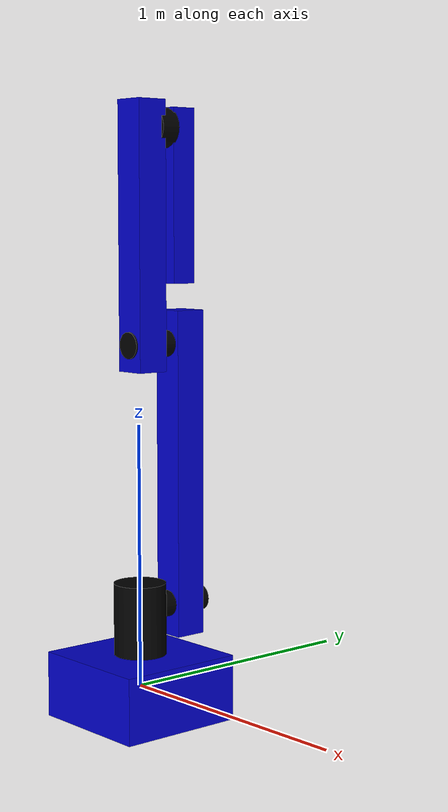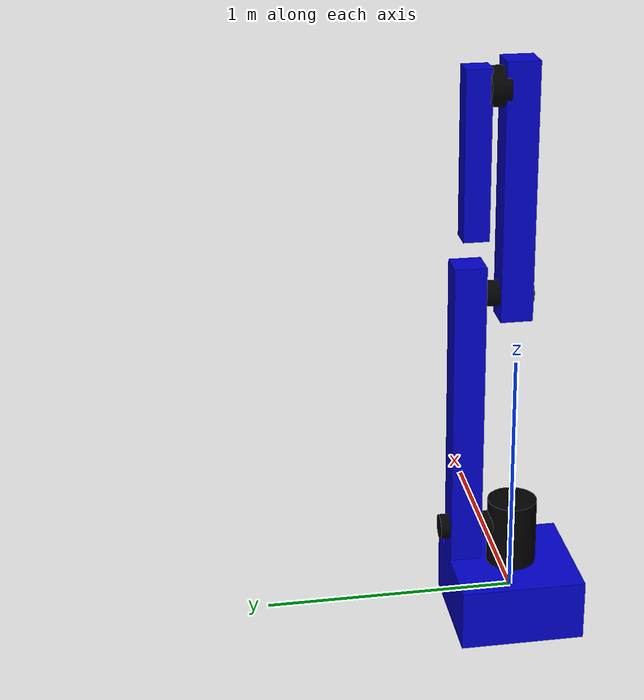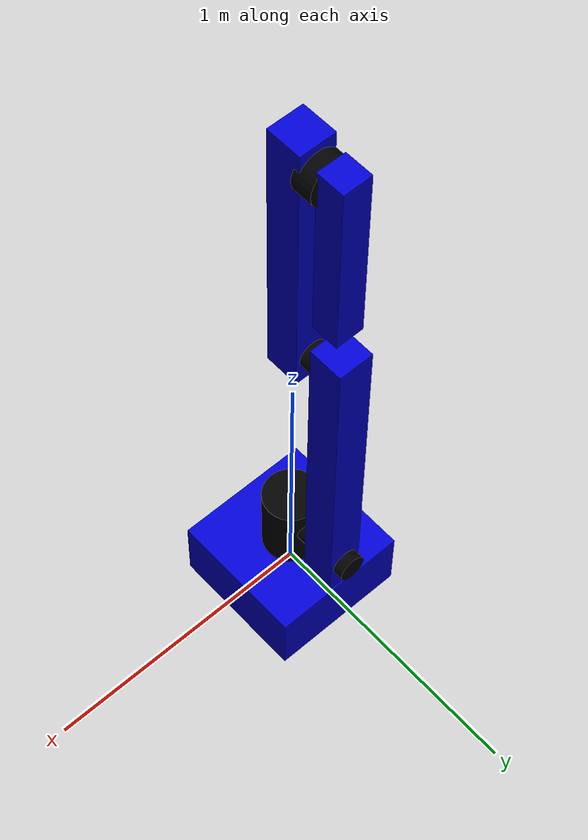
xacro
<?xml version="1.0"?>
<robot name="ram" xmlns:xacro="http://www.ros.org/wiki/xacro">

<!-- ...................Material Definitions........................ -->

  <material name="blue">
    <color rgba="0.0 0.0 0.8 1.0"/>
  </material>

  <material name="black">
    <color rgba="0.0 0.0 0.0 1.0"/>
  </material>

<!--.................... Constant Definitions........................-->
  <xacro:property name="deg" value="0.017453293"/>

<!--.................... Fixing the robot to Gazebo.................. -->
  <link name="world"/>

  <joint name="fixed" type="fixed">
    <parent link="world"/>
    <child link="base_link"/>
  </joint>

<!---............................. Link Definitions ..................-->
<link name="base_link">
    <inertial>
	<origin xyz="0 0 0" rpy="0 0 0"/>
	<mass value="0.203873598369"/>
	<inertia ixx="0.00530920616718" ixy="0.0" ixz="0.0" iyy="0.00530920616718" iyz="0.0" izz="0.00849472986748"/>
    </inertial>

    <visual>
        <geometry>
           <box size="0.5 0.5 0.25"/>
        </geometry>
        <material name ="blue"/>
        <origin rpy="0 0 0" xyz="0 0 0"/>
    </visual>

    <collision>
	<origin xyz="0 0 0" rpy="0 0 0"/>
        <geometry>
           <box size="0.5 0.5 0.25"/>
        </geometry>
    </collision>
</link>

<link name="link1">
    <inertial>
	<origin xyz="0 0 0.25" rpy="0 0 0"/>
	<mass value="0.101936799185"/>
	<inertia ixx="0.0010193675841" ixy="0.0" ixz="0.0" iyy="0.0010193675841" iyz="0.0" izz="0.000509683995923"/>
    </inertial>

    <visual>
        <geometry>
           <cylinder radius="0.1" length="0.3"/>
        </geometry>
        <material name ="black"/>
        <origin rpy="0 0 0" xyz="0 0 0.25"/>
    </visual>

    <collision>
	<origin xyz="0 0 0.25" rpy="0 0 0"/>
        <geometry>
           <cylinder radius="0.1" length="0.3"/>
        </geometry>
    </collision>
</link>

<link name="link2">
    <inertial>
	<origin xyz="0 0 0" rpy="${90*deg} 0 0"/>
        <mass value="0.0886850152905"/>
	<inertia ixx="0.000720565461009" ixy="0.0" ixz="0.0" iyy="0.000720565461009" iyz="0.0" izz="0.000110856269113"/>
    </inertial>

    <visual>
        <geometry>
	   <cylinder length="0.3" radius="0.05"/>
	</geometry>
        <material name ="black"/>
        <origin rpy="${90*deg} 0 0" xyz="0 0 0"/>
    </visual>

    <collision>
	<origin xyz="0 0 0" rpy="${90*deg} 0 0"/>
        <geometry>
	   <cylinder length="0.3" radius="0.05"/>
	</geometry>
    </collision>

</link>

<link name="link3">
    <inertial>
	<origin xyz="0 0 0" rpy="0 0 0"/>
	<mass value="0.0886850152905"/>
	<inertia ixx="0.0116629986477" ixy="0.0" ixz="0.0" iyy="0.0116629986477" iyz="0.0" izz="0.000230950468272"/>
    </inertial>

    <visual>
        <geometry>
           <box size="0.125 0.125 1.25"/>
        </geometry>
        <material name ="blue"/>
        <origin rpy="0 0 0" xyz="0 0 0"/>
    </visual>

    <collision>
	<origin xyz="0 0 0" rpy="0 0 0"/>
        <geometry>
           <box size="0.125 0.125 1.25"/>
        </geometry>
    </collision>

</link>

<link name="link4">
    <inertial>
	<origin xyz="0 0 0" rpy="${90*deg} 0 0"/>
	<mass value="0.0662589194699"/>
	<inertia ixx="0.000538353505352" ixy="0.0" ixz="0.0" iyy="0.000538353505352" iyz="0.0" izz="8.28236493374e-05"/>
    </inertial>

    <visual>
        <geometry>
	   <cylinder length="0.3" radius="0.05"/>
	</geometry>
        <material name ="black"/>
        <origin rpy="${90*deg} 0 0" xyz="0 0 0"/>
    </visual>

    <collision>
	<origin xyz="0 0 0" rpy="${90*deg} 0 0"/>
        <geometry>
	   <cylinder length="0.3" radius="0.05"/>
	</geometry>
    </collision>

</link>

<link name="link5">
    <inertial>
	<origin xyz="0 0 0" rpy="0 0 0"/>
	<mass value="0.0540265035678"/>
	<inertia ixx="0.00457255381148" ixy="0.0" ixz="0.0" iyy="0.00457255381148" iyz="0.0" izz="0.00014069396343"/>
    </inertial>

    <visual>
        <geometry>
           <box size="0.125 0.125 1"/>
        </geometry>
        <material name ="blue"/>
        <origin rpy="0 0 0" xyz="0 0 0"/>
    </visual>

    <collision>
	<origin xyz="0 0 0" rpy="0 0 0"/>
        <geometry>
           <box size="0.125 0.125 1"/>
        </geometry>
    </collision>

</link>

<link name="link6">
    <inertial>
	<origin xyz="0 0 0" rpy="${90*deg} 0 0"/>
	<mass value="0.0489296636086"/>
	<inertia ixx="9.17430825688e-05" ixy="0.0" ixz="0.0" iyy="9.17430825688e-05" iyz="0.0" izz="0.000137614678899"/>
    </inertial>

    <visual>
        <geometry>
           <cylinder radius="0.075" length="0.075"/>
        </geometry>
        <material name ="black"/>
        <origin rpy="${90*deg} 0 0" xyz="0 0 0"/>
    </visual>

    <collision>
	<origin xyz="0 0 0" rpy="${90*deg} 0 0"/>
        <geometry>
           <cylinder radius="0.075" length="0.075"/>
        </geometry>
    </collision>

</link>

<link name="link7">
    <inertial>
	<origin xyz="0 0 0" rpy="0 0 0"/>
	<mass value="0.032619775739"/>
	<inertia ixx="0.00117567061366" ixy="0.0" ixz="0.0" iyy="0.00117567061366" iyz="0.0" izz="5.43662711519e-05"/>
    </inertial>

    <visual>
        <geometry>
           <box size="0.1 0.1 0.65"/>
        </geometry>
        <material name ="blue"/>
        <origin rpy="0 0 0" xyz="0 0 0"/>
    </visual>

    <collision>
	<origin xyz="0 0 0" rpy="0 0 0"/>
        <geometry>
           <box size="0.1 0.1 0.65"/>
        </geometry>
    </collision>

</link>

<!--...........................Joint Definitions.....................................-->
    <joint name="joint1" type="revolute">
        <parent link="base_link"/>
        <child link="link1"/>
        <axis xyz="0 0 1" />
        <limit effort="420.0" lower="${-180*deg}" upper="${180*deg}" velocity="${30*deg}" />
        <origin xyz="0 0 0" rpy="0 0 0"/>
        <dynamics damping="0.7"/>
    </joint>

    <joint name="joint2" type="revolute">
        <parent link="link1"/>
        <child link="link2"/>
        <axis xyz="0 1 0" />
        <limit effort="150.0" lower="${-90*deg}" upper="${90*deg}" velocity="${15*deg}" />
        <origin xyz="0 0.15 0.3" rpy="0 0 0"/>
        <dynamics damping="0.7"/>
    </joint>

    <joint name="joint3" type="revolute">
	<parent link="link2"/>
	<child link="link3"/>
        <limit effort="0" lower="0" upper="0" velocity="0"/>
        <origin xyz="0 0.05 0.5" rpy="0 0 0"/>
    </joint>

    <joint name="joint4" type="revolute">
        <parent link="link3"/>
        <child link="link4"/>
        <axis xyz="0 1 0" />
        <limit effort="100.0" lower="${-135*deg}" upper="${135*deg}" velocity="${23*deg}" />
        <origin xyz="0 -0.1 0.5" rpy="0 0 0"/>
        <dynamics damping="0.7"/>
    </joint>

    <joint name="joint5" type="revolute">
	<parent link="link4"/>
	<child link="link5"/>
        <limit effort="0" lower="0" upper="0" velocity="0"/>
        <origin xyz="0 -0.08 0.4" rpy="0 0 0"/>
    </joint>

    <joint name="joint6" type="revolute">
        <parent link="link5"/>
        <child link="link6"/>
        <axis xyz="0 1 0" />
        <limit effort="100.0" lower="${-180*deg}" upper="${180*deg}" velocity="${30*deg}" />
        <origin xyz="0 0.08 0.4" rpy="0 0 0"/>
        <dynamics damping="0.7"/>
    </joint>

    <joint name="joint7" type="prismatic">
        <parent link="link6"/>
	<child link="link7"/>
        <axis xyz="0 0 1" />
        <limit effort="100" lower="0" upper="0.5" velocity="0.05"/>
        <origin xyz="0 0.08 -0.25" rpy="0 0 0"/>
        <dynamics damping="0.7"/>
    </joint>

<!--........................... Transmission Definitions.....................................-->
  <transmission name="trans1">
    <type>transmission_interface/SimpleTransmission</type>
    <joint name="joint1">
      <hardwareInterface>hardware_interface/EffortJointInterface</hardwareInterface>
    </joint>
    <actuator name="motor1">
      <hardwareInterface>hardware_interface/EffortJointInterface</hardwareInterface>
      <mechanicalReduction>1</mechanicalReduction>
    </actuator>
  </transmission>

  <transmission name="trans2">
    <type>transmission_interface/SimpleTransmission</type>
    <joint name="joint2">
      <hardwareInterface>hardware_interface/EffortJointInterface</hardwareInterface>
    </joint>
    <actuator name="motor2">
      <hardwareInterface>hardware_interface/EffortJointInterface</hardwareInterface>
      <mechanicalReduction>1</mechanicalReduction>
    </actuator>
  </transmission>

  <transmission name="trans3">
    <type>transmission_interface/SimpleTransmission</type>
    <joint name="joint3">
      <hardwareInterface>hardware_interface/EffortJointInterface</hardwareInterface>
    </joint>
    <actuator name="motor3">
      <hardwareInterface>hardware_interface/EffortJointInterface</hardwareInterface>
      <mechanicalReduction>1</mechanicalReduction>
    </actuator>
  </transmission>

  <transmission name="trans4">
    <type>transmission_interface/SimpleTransmission</type>
    <joint name="joint4">
      <hardwareInterface>hardware_interface/EffortJointInterface</hardwareInterface>
    </joint>
    <actuator name="motor4">
      <hardwareInterface>hardware_interface/EffortJointInterface</hardwareInterface>
      <mechanicalReduction>1</mechanicalReduction>
    </actuator>
  </transmission>

  <transmission name="trans5">
    <type>transmission_interface/SimpleTransmission</type>
    <joint name="joint5">
      <hardwareInterface>hardware_interface/EffortJointInterface</hardwareInterface>
    </joint>
    <actuator name="motor5">
      <hardwareInterface>hardware_interface/EffortJointInterface</hardwareInterface>
      <mechanicalReduction>1</mechanicalReduction>
    </actuator>
  </transmission>

  <transmission name="trans6">
    <type>transmission_interface/SimpleTransmission</type>
    <joint name="joint6">
      <hardwareInterface>hardware_interface/EffortJointInterface</hardwareInterface>
    </joint>
    <actuator name="motor6">
      <hardwareInterface>hardware_interface/EffortJointInterface</hardwareInterface>
      <mechanicalReduction>1</mechanicalReduction>
    </actuator>
  </transmission>

  <transmission name="trans7">
    <type>transmission_interface/SimpleTransmission</type>
    <joint name="joint7">
      <hardwareInterface>hardware_interface/EffortJointInterface</hardwareInterface>
    </joint>
    <actuator name="motor7">
      <hardwareInterface>hardware_interface/EffortJointInterface</hardwareInterface>
      <mechanicalReduction>1</mechanicalReduction>
    </actuator>
  </transmission>

<!--.................. Gazebo links............................. -->
  <gazebo reference="base_link">
    <material>Gazebo/Blue</material>
    <mu1>2</mu1>
    <mu2>2</mu2>
  </gazebo>

  <gazebo reference="link1">
    <material>Gazebo/Black</material>
    <mu1>2</mu1>
    <mu2>2</mu2>
  </gazebo>

  <gazebo reference="link2">
    <material>Gazebo/Black</material>
    <mu1>2</mu1>
    <mu2>2</mu2>
  </gazebo>

  <gazebo reference="link3">
    <material>Gazebo/Blue</material>
    <mu1>2</mu1>
    <mu2>2</mu2>
  </gazebo>

  <gazebo reference="link4">
    <material>Gazebo/Black</material>
    <mu1>2</mu1>
    <mu2>2</mu2>
  </gazebo>

  <gazebo reference="link5">
    <material>Gazebo/Blue</material>
    <mu1>2</mu1>
    <mu2>2</mu2>
  </gazebo>

  <gazebo reference="link6">
    <material>Gazebo/Black</material>
    <mu1>2</mu1>
    <mu2>2</mu2>
  </gazebo>

  <gazebo reference="link7">
    <material>Gazebo/Blue</material>
    <mu1>2</mu1>
    <mu2>2</mu2>
  </gazebo>

<!--................. Gazebo plugins....................-->
  <gazebo>
	<plugin name="gazebo_ros_control" filename="libgazebo_ros_control.so">
	    <robotNamespace>/ram</robotNamespace>
	</plugin>
  </gazebo>

</robot>
